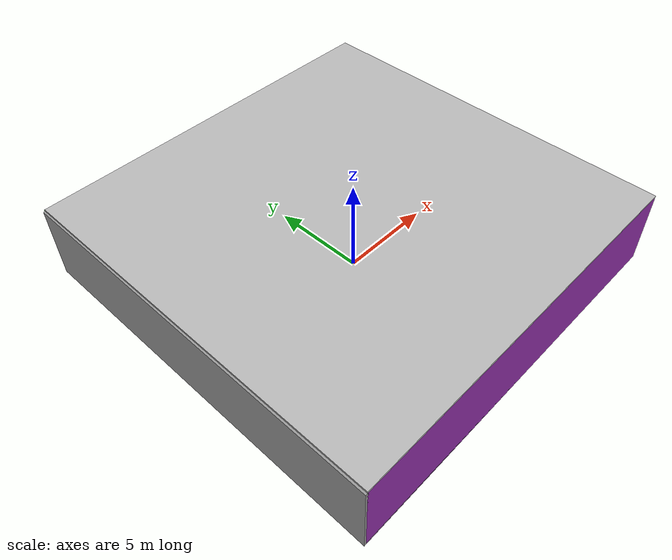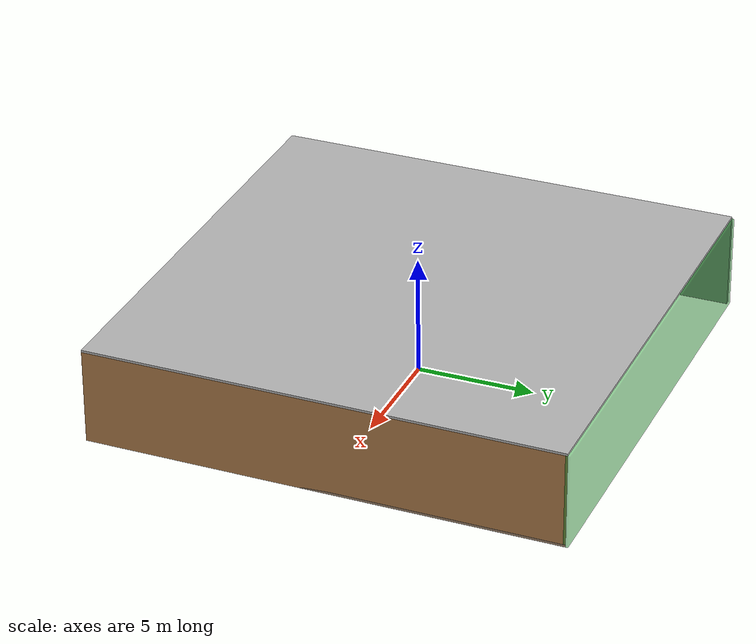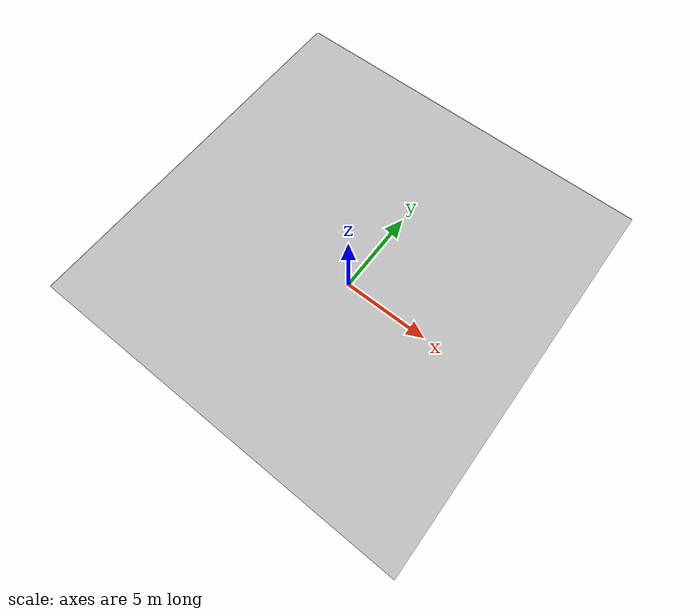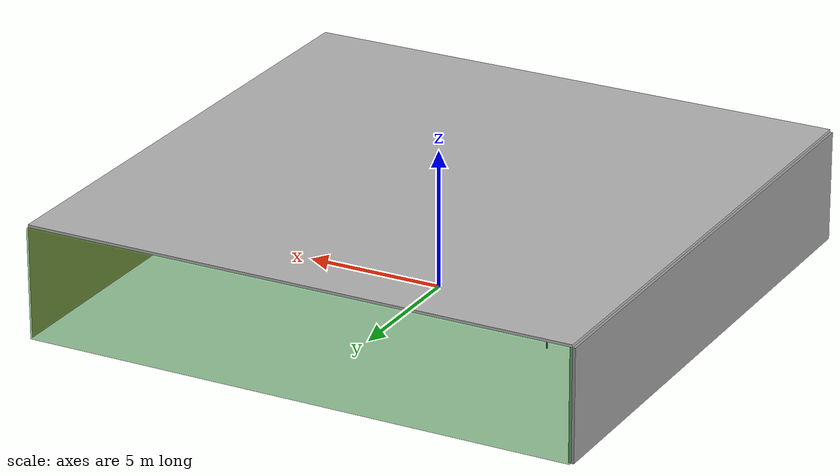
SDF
<sdf version="1.4">
 <world name="default">
  <physics type="ode">
   <max_step_size>0.001</max_step_size>
   <real_time_factor>1</real_time_factor>
   <real_time_update_rate>1000</real_time_update_rate>
   <gravity>0 0 -9.8</gravity>
  </physics>
  <scene><ambient>0.4 0.4 0.4 1</ambient><background>0.7 0.7 0.7 1</background><shadows>1</shadows></scene>
  <model name="Surrounding">
   <static>1</static>
   <link name="Ceiling">
    <collision name="Ceiling_Collision"><geometry><box><size>20 20 0.1</size></box></geometry></collision>
    <visual name="Ceiling_Visual">
     <geometry><box><size>20 20 0.1</size></box></geometry>
     <material>
      <script><uri>file://media/materials/scripts/gazebo.material</uri><name>Gazebo/PioneerBody</name></script>
     </material>
    </visual>
    <pose>0 0 4.05 0 0 0</pose>
   </link>
   <link name="Wall_South">
    <collision name="Wall_South_Collision">
     <geometry><box><size>20 0 4</size></box></geometry>
     <pose>0 0 2 0 -0 0</pose>
    </collision>
    <visual name="Wall_South_Visual">
     <pose>0 0 2 0 -0 0</pose>
     <geometry><box><size>20 0 4</size></box></geometry>
     <material>
      <script><uri>file://media/materials/scripts/gazebo.material</uri><name>Gazebo/PurpleGlow</name></script>
     </material>
    </visual>
    <velocity_decay><linear>0</linear><angular>0</angular></velocity_decay>
    <pose>0 -10 0 0 -0 0</pose>
   </link>
   <link name="Wall_East">
    <collision name="Wall_21_Collision">
     <geometry><box><size>20 0 4</size></box></geometry>
     <pose>0 0 2 0 -0 0</pose>
    </collision>
    <visual name="Wall_21_Visual">
     <pose>0 0 2 0 -0 0</pose>
     <geometry><box><size>20 0 4</size></box></geometry>
     <material>
      <script><uri>file://media/materials/scripts/gazebo.material</uri><name>Gazebo/Wood</name></script>
     </material>
    </visual>
    <velocity_decay><linear>0</linear><angular>0</angular></velocity_decay>
    <pose>10 0 0 0 -0 1.5708</pose>
   </link>
   <link name="Wall_North">
    <collision name="Wall_22_Collision">
     <geometry><box><size>20 0.2 4</size></box></geometry>
     <pose>0 0 2 0 -0 0</pose>
    </collision>
    <visual name="Wall_22_Visual">
     <pose>0 0 2 0 -0 0</pose>
     <geometry><box><size>20 0.2 4</size></box></geometry>
     <material>
      <script><uri>file://media/materials/scripts/gazebo.material</uri><name>Gazebo/GreenTransparent</name></script>
     </material>
    </visual>
    <velocity_decay><linear>0</linear><angular>0</angular></velocity_decay>
    <pose>0 10 0 0 -0 0</pose>
   </link>
   <link name="Wall_West">
    <collision name="Wall_23_Collision">
     <geometry><box><size>20 0.2 4</size></box></geometry>
     <pose>0 0 2 0 -0 0</pose>
    </collision>
    <visual name="Wall_23_Visual">
     <pose>0 0 2 0 -0 0</pose>
     <geometry><box><size>20 0.2 4</size></box></geometry>
     <material>
      <script><uri>file://media/materials/scripts/gazebo.material</uri><name>Gazebo/GreyGradientSky</name></script>
     </material>
    </visual>
    <velocity_decay><linear>0</linear><angular>0</angular></velocity_decay>
    <pose>-10 0 0 0 0 -1.5708</pose>
   </link>
   <link name="Ground_link">
    <collision name="collision">
     <pose>0 0 .05 0 -0 0</pose>
     <geometry><box><size>20 20 0.1</size></box></geometry>
    </collision>
    <visual name="visual">
     <pose>0 0 .05 0 -0 0</pose>
     <geometry><box><size>20 20 0.1</size></box></geometry>
     <material>
      <script><uri>file://media/materials/scripts/gazebo.material</uri><name>Gazebo/GreyTransparent</name></script>
     </material>
    </visual>
   </link>
   <static>1</static>
  </model>
  <spherical_coordinates>
   <surface_model>EARTH_WGS84</surface_model>
   <latitude_deg>0</latitude_deg>
   <longitude_deg>0</longitude_deg>
   <elevation>0</elevation>
   <heading_deg>0</heading_deg>
  </spherical_coordinates>
  <light name="lightball_0" type="diffuse">
   <diffuse>0.8 0.8 0.8 1</diffuse>
   <specular>0.2 0.2 0.2 1</specular>
   <attenuation>
    <range>100</range>
    <constant>0.7</constant>
    <linear>0.01</linear>
    <quadratic>0.001</quadratic>
   </attenuation>
   <direction>-0.5 0.1 -0.9</direction>
   <pose>-8.03389082888 -2.87172840111 1.42070743087 0 0 0</pose>
  </light>
  <light name="lightball_1" type="diffuse">
   <diffuse>0.8 0.8 0.8 1</diffuse>
   <specular>0.2 0.2 0.2 1</specular>
   <attenuation>
    <range>100</range>
    <constant>0.7</constant>
    <linear>0.01</linear>
    <quadratic>0.001</quadratic>
   </attenuation>
   <direction>-0.5 0.1 -0.9</direction>
   <pose>-4.55245293487 -0.907240603687 2.25530559771 0 0 0</pose>
  </light>
  <light name="lightball_2" type="diffuse">
   <diffuse>0.8 0.8 0.8 1</diffuse>
   <specular>0.2 0.2 0.2 1</specular>
   <attenuation>
    <range>100</range>
    <constant>0.7</constant>
    <linear>0.01</linear>
    <quadratic>0.001</quadratic>
   </attenuation>
   <direction>-0.5 0.1 -0.9</direction>
   <pose>-1.80425078084 -7.63015109198 0.739815224769 0 0 0</pose>
  </light>
  <light name="lightball_3" type="diffuse">
   <diffuse>0.8 0.8 0.8 1</diffuse>
   <specular>0.2 0.2 0.2 1</specular>
   <attenuation>
    <range>100</range>
    <constant>0.7</constant>
    <linear>0.01</linear>
    <quadratic>0.001</quadratic>
   </attenuation>
   <direction>-0.5 0.1 -0.9</direction>
   <pose>6.99233144544 9.837748256 1.03003881573 0 0 0</pose>
  </light>
  <light name="lightball_4" type="diffuse">
   <diffuse>0.8 0.8 0.8 1</diffuse>
   <specular>0.2 0.2 0.2 1</specular>
   <attenuation>
    <range>100</range>
    <constant>0.7</constant>
    <linear>0.01</linear>
    <quadratic>0.001</quadratic>
   </attenuation>
   <direction>-0.5 0.1 -0.9</direction>
   <pose>6.7135069615 5.01209161676 0.850796021719 0 0 0</pose>
  </light>
  <light name="lightball_5" type="diffuse">
   <diffuse>0.8 0.8 0.8 1</diffuse>
   <specular>0.2 0.2 0.2 1</specular>
   <attenuation>
    <range>100</range>
    <constant>0.7</constant>
    <linear>0.01</linear>
    <quadratic>0.001</quadratic>
   </attenuation>
   <direction>-0.5 0.1 -0.9</direction>
   <pose>-2.82036482454 -1.35269290312 3.40071648676 0 0 0</pose>
  </light>
  <light name="lightball_6" type="diffuse">
   <diffuse>0.8 0.8 0.8 1</diffuse>
   <specular>0.2 0.2 0.2 1</specular>
   <attenuation>
    <range>100</range>
    <constant>0.7</constant>
    <linear>0.01</linear>
    <quadratic>0.001</quadratic>
   </attenuation>
   <direction>-0.5 0.1 -0.9</direction>
   <pose>-9.88919850352 0.946037205913 1.19772723096 0 0 0</pose>
  </light>
  <light name="lightball_7" type="diffuse">
   <diffuse>0.8 0.8 0.8 1</diffuse>
   <specular>0.2 0.2 0.2 1</specular>
   <attenuation>
    <range>100</range>
    <constant>0.7</constant>
    <linear>0.01</linear>
    <quadratic>0.001</quadratic>
   </attenuation>
   <direction>-0.5 0.1 -0.9</direction>
   <pose>7.70466577088 2.38081849471 3.22431695828 0 0 0</pose>
  </light>
  <light name="lightball_8" type="diffuse">
   <diffuse>0.8 0.8 0.8 1</diffuse>
   <specular>0.2 0.2 0.2 1</specular>
   <attenuation>
    <range>100</range>
    <constant>0.7</constant>
    <linear>0.01</linear>
    <quadratic>0.001</quadratic>
   </attenuation>
   <direction>-0.5 0.1 -0.9</direction>
   <pose>-6.38681712296 2.0422522194 2.84314136341 0 0 0</pose>
  </light>
  <include><uri>model://table</uri><pose>-5.29656506079 1.97284026876 0 0 0 2.33173618268</pose></include>
  <include>
   <uri>model://construction_cone</uri>
   <pose>7.31440862559 -4.13618011654 0 0 0 2.49436938187</pose>
  </include>
 </world>
</sdf>

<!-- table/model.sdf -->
<sdf version="1.5">
  <model name="table">
    <static>true</static>
    <link name="link">
      <collision name="surface">
        <pose>0 0 1.0 0 0 0</pose>
        <geometry>
          <box>
            <size>1.5 0.8 0.03</size>
          </box>
        </geometry>
        <surface>
          <friction>
            <ode>
              <mu>0.6</mu>
              <mu2>0.6</mu2>
            </ode>
          </friction>
        </surface>
      </collision>
      <visual name="visual1">
        <pose>0 0 1.0 0 0 0</pose>
        <geometry>
          <box>
            <size>1.5 0.8 0.03</size>
          </box>
        </geometry>
        <material>
          <script>
            <uri>model://media/materials/scripts/gazebo.material</uri>
            <name>Gazebo/Wood</name>
          </script>
        </material>
      </visual>
      <collision name="front_left_leg">
        <pose>0.68 0.38 0.5 0 0 0</pose>
        <geometry>
          <cylinder>
            <radius>0.02</radius>
            <length>1.0</length>
          </cylinder>
        </geometry>
      </collision>
      <visual name="front_left_leg">
        <pose>0.68 0.38 0.5 0 0 0</pose>
        <geometry>
          <cylinder>
            <radius>0.02</radius>
            <length>1.0</length>
          </cylinder>
        </geometry>
        <material>
          <script>
            <uri>model://media/materials/scripts/gazebo.material</uri>
            <name>Gazebo/Grey</name>
          </script>
        </material>
      </visual>
      <collision name="front_right_leg">
        <pose>0.68 -0.38 0.5 0 0 0</pose>
        <geometry>
          <cylinder>
            <radius>0.02</radius>
            <length>1.0</length>
          </cylinder>
        </geometry>
      </collision>
      <visual name="front_right_leg">
        <pose>0.68 -0.38 0.5 0 0 0</pose>
        <geometry>
          <cylinder>
            <radius>0.02</radius>
            <length>1.0</length>
          </cylinder>
        </geometry>
        <material>
          <script>
            <uri>model://media/materials/scripts/gazebo.material</uri>
            <name>Gazebo/Grey</name>
          </script>
        </material>
      </visual>
      <collision name="back_right_leg">
        <pose>-0.68 -0.38 0.5 0 0 0</pose>
        <geometry>
          <cylinder>
            <radius>0.02</radius>
            <length>1.0</length>
          </cylinder>
        </geometry>
      </collision>
      <visual name="back_right_leg">
        <pose>-0.68 -0.38 0.5 0 0 0</pose>
        <geometry>
          <cylinder>
            <radius>0.02</radius>
            <length>1.0</length>
          </cylinder>
        </geometry>
        <material>
          <script>
            <uri>model://media/materials/scripts/gazebo.material</uri>
            <name>Gazebo/Grey</name>
          </script>
        </material>
      </visual>
      <collision name="back_left_leg">
        <pose>-0.68 0.38 0.5 0 0 0</pose>
        <geometry>
          <cylinder>
            <radius>0.02</radius>
            <length>1.0</length>
          </cylinder>
        </geometry>
      </collision>
      <visual name="back_left_leg">
        <pose>-0.68 0.38 0.5 0 0 0</pose>
        <geometry>
          <cylinder>
            <radius>0.02</radius>
            <length>1.0</length>
          </cylinder>
        </geometry>
        <material>
          <script>
            <uri>model://media/materials/scripts/gazebo.material</uri>
            <name>Gazebo/Grey</name>
          </script>
        </material>
      </visual>
    </link>
  </model>
</sdf>

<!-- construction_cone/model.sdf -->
<sdf version="1.5">
  <model name="Construction Cone">
    <link name="link">
      <collision name="collision">
        <geometry>
          <mesh>
            <scale>10 10 10</scale>
            <uri>file://isr-testbed/construction_cone/meshes/construction_cone.dae</uri>
          </mesh>
        </geometry>
      </collision>
      <visual name="visual">
        <geometry>
          <mesh>
            <scale>10 10 10</scale>
            <uri>file://isr-testbed/construction_cone/meshes/construction_cone.dae</uri>
          </mesh>
        </geometry>
      </visual>
    </link>
  </model>
</sdf>
